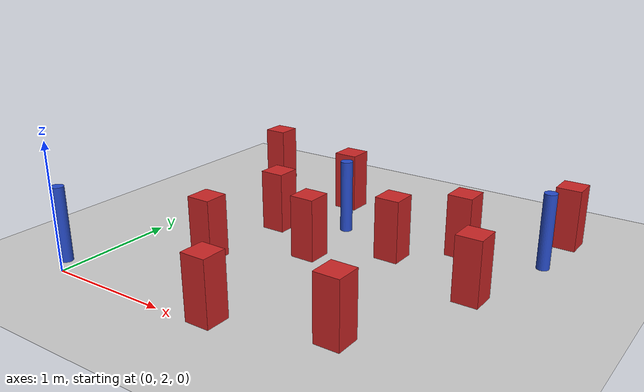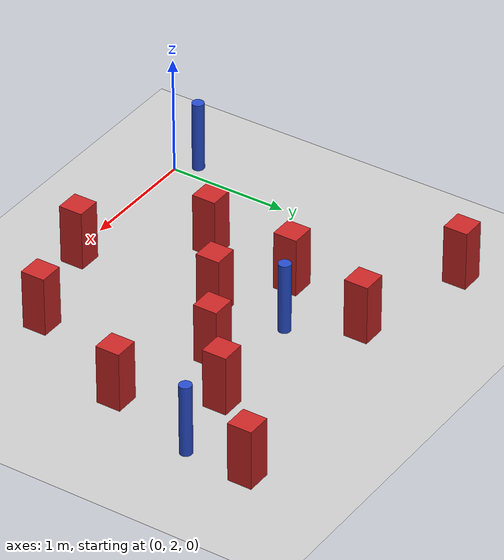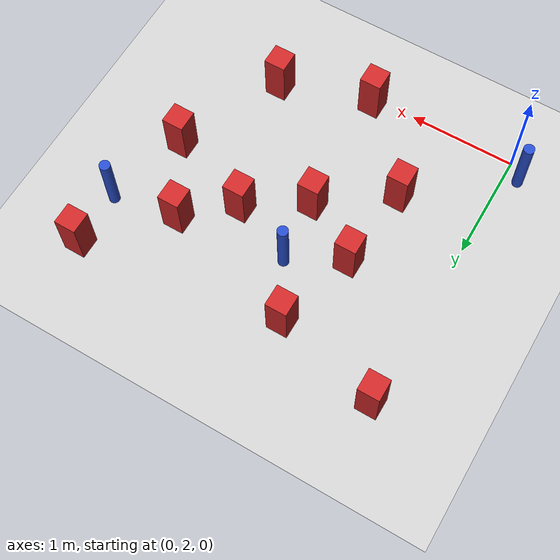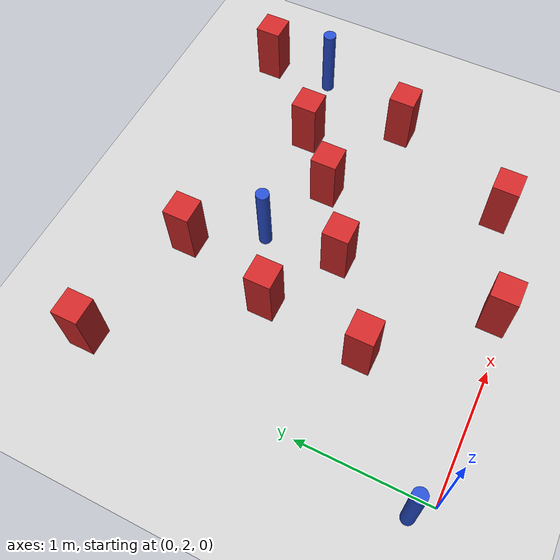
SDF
<sdf version="1.6">
 <world name="default">
  <model name="ground_plane">
   <static>1</static>
   <link name="link">
    <collision name="collision">
     <geometry><plane><normal>0 0 1</normal><size>100 100</size></plane></geometry>
     <surface><friction><ode><mu>100</mu><mu2>50</mu2></ode></friction></surface>
    </collision>
    <visual name="visual">
     <cast_shadows>0</cast_shadows>
     <geometry><plane><normal>0 0 1</normal><size>100 100</size></plane></geometry>
     <material>
      <ambient>1.0 1.0 1.0 1.0</ambient>
      <diffuse>0.8 0.8 0.8 1.0</diffuse>
      <specular>0.01 0.01 0.01 1.000000</specular>
     </material>
    </visual>
   </link>
  </model>
  <model name="pole_obstacle28">
   <static>true</static>
   <pose>-0.127259990239 2.14203002078 -3.09024884848e-07 -7.19054271902e-07 -2.11315075204e-07 -1.93935509288e-07</pose>
   <link name="link">
    <pose>0 0 0.3 0 -0 0</pose>
    <inertial>
     <mass>1</mass>
     <inertia><ixx>0.145833</ixx><ixy>0</ixy><ixz>0</ixz><iyy>0.145833</iyy><iyz>0</iyz><izz>0.125</izz></inertia>
    </inertial>
    <collision name="collision">
     <geometry><cylinder><radius>0.05</radius><length>.6</length></cylinder></geometry>
    </collision>
    <visual name="visual">
     <geometry><cylinder><radius>0.05</radius><length>.6</length></cylinder></geometry>
     <material>
      <script><name>Gazebo/Blue</name><uri>file://media/materials/scripts/gazebo.material</uri></script>
     </material>
    </visual>
   </link>
  </model>
  <model name="square_post_obstacle25">
   <static>true</static>
   <pose>1.3880900552 2.08539997467 -4.36207812815e-07 3.75137919937e-06 9.77721102514e-07 2.47381364184e-05</pose>
   <link name="link">
    <pose>0 0 0.25 0 -0 0</pose>
    <inertial>
     <mass>100</mass>
     <inertia>
      <ixx>0.166667</ixx>
      <ixy>0</ixy>
      <ixz>0</ixz>
      <iyy>0.166667</iyy>
      <iyz>0</iyz>
      <izz>0.166667</izz>
     </inertia>
    </inertial>
    <collision name="collision"><geometry><box><size>.2 .2 .5</size></box></geometry></collision>
    <visual name="visual">
     <geometry><box><size>.2 .2 .5</size></box></geometry>
     <material>
      <script><name>Gazebo/Red</name><uri>file://media/materials/scripts/gazebo.material</uri></script>
     </material>
    </visual>
   </link>
  </model>
  <model name="square_post_obstacle37">
   <static>true</static>
   <pose>2.2260100552 2.34418997467 -4.36207812815e-07 3.75137919937e-06 9.77721102514e-07 2.47381364184e-05</pose>
   <link name="link">
    <pose>0 0 0.25 0 -0 0</pose>
    <inertial>
     <mass>100</mass>
     <inertia>
      <ixx>0.166667</ixx>
      <ixy>0</ixy>
      <ixz>0</ixz>
      <iyy>0.166667</iyy>
      <iyz>0</iyz>
      <izz>0.166667</izz>
     </inertia>
    </inertial>
    <collision name="collision"><geometry><box><size>.2 .2 .5</size></box></geometry></collision>
    <visual name="visual">
     <geometry><box><size>.2 .2 .5</size></box></geometry>
     <material>
      <script><name>Gazebo/Red</name><uri>file://media/materials/scripts/gazebo.material</uri></script>
     </material>
    </visual>
   </link>
  </model>
  <model name="square_post_obstacle42">
   <static>true</static>
   <pose>1.0119000552 4.36777997467 -4.36207812815e-07 3.75137919937e-06 9.77721102514e-07 2.47381364184e-05</pose>
   <link name="link">
    <pose>0 0 0.25 0 -0 0</pose>
    <inertial>
     <mass>100</mass>
     <inertia>
      <ixx>0.166667</ixx>
      <ixy>0</ixy>
      <ixz>0</ixz>
      <iyy>0.166667</iyy>
      <iyz>0</iyz>
      <izz>0.166667</izz>
     </inertia>
    </inertial>
    <collision name="collision"><geometry><box><size>.2 .2 .5</size></box></geometry></collision>
    <visual name="visual">
     <geometry><box><size>.2 .2 .5</size></box></geometry>
     <material>
      <script><name>Gazebo/Red</name><uri>file://media/materials/scripts/gazebo.material</uri></script>
     </material>
    </visual>
   </link>
  </model>
  <model name="square_post_obstacle68">
   <static>true</static>
   <pose>1.8762800552 3.62501997467 -4.36207812815e-07 3.75137919937e-06 9.77721102514e-07 2.47381364184e-05</pose>
   <link name="link">
    <pose>0 0 0.25 0 -0 0</pose>
    <inertial>
     <mass>100</mass>
     <inertia>
      <ixx>0.166667</ixx>
      <ixy>0</ixy>
      <ixz>0</ixz>
      <iyy>0.166667</iyy>
      <iyz>0</iyz>
      <izz>0.166667</izz>
     </inertia>
    </inertial>
    <collision name="collision"><geometry><box><size>.2 .2 .5</size></box></geometry></collision>
    <visual name="visual">
     <geometry><box><size>.2 .2 .5</size></box></geometry>
     <material>
      <script><name>Gazebo/Red</name><uri>file://media/materials/scripts/gazebo.material</uri></script>
     </material>
    </visual>
   </link>
  </model>
  <model name="square_post_obstacle70">
   <static>true</static>
   <pose>0.718320055196 2.83022997467 -4.36207812815e-07 3.75137919937e-06 9.77721102514e-07 2.47381364184e-05</pose>
   <link name="link">
    <pose>0 0 0.25 0 -0 0</pose>
    <inertial>
     <mass>100</mass>
     <inertia>
      <ixx>0.166667</ixx>
      <ixy>0</ixy>
      <ixz>0</ixz>
      <iyy>0.166667</iyy>
      <iyz>0</iyz>
      <izz>0.166667</izz>
     </inertia>
    </inertial>
    <collision name="collision"><geometry><box><size>.2 .2 .5</size></box></geometry></collision>
    <visual name="visual">
     <geometry><box><size>.2 .2 .5</size></box></geometry>
     <material>
      <script><name>Gazebo/Red</name><uri>file://media/materials/scripts/gazebo.material</uri></script>
     </material>
    </visual>
   </link>
  </model>
  <model name="square_post_obstacle73">
   <static>true</static>
   <pose>2.9115300552 4.61348997467 -4.36207812815e-07 3.75137919937e-06 9.77721102514e-07 2.47381364184e-05</pose>
   <link name="link">
    <pose>0 0 0.25 0 -0 0</pose>
    <inertial>
     <mass>100</mass>
     <inertia>
      <ixx>0.166667</ixx>
      <ixy>0</ixy>
      <ixz>0</ixz>
      <iyy>0.166667</iyy>
      <iyz>0</iyz>
      <izz>0.166667</izz>
     </inertia>
    </inertial>
    <collision name="collision"><geometry><box><size>.2 .2 .5</size></box></geometry></collision>
    <visual name="visual">
     <geometry><box><size>.2 .2 .5</size></box></geometry>
     <material>
      <script><name>Gazebo/Red</name><uri>file://media/materials/scripts/gazebo.material</uri></script>
     </material>
    </visual>
   </link>
  </model>
  <model name="pole_obstacle114">
   <static>true</static>
   <pose>2.91105000976 4.09429002078 -3.09024884848e-07 -7.19054271903e-07 -2.11315075193e-07 -1.93935509285e-07</pose>
   <link name="link">
    <pose>0 0 0.3 0 -0 0</pose>
    <inertial>
     <mass>1</mass>
     <inertia><ixx>0.145833</ixx><ixy>0</ixy><ixz>0</ixz><iyy>0.145833</iyy><iyz>0</iyz><izz>0.125</izz></inertia>
    </inertial>
    <collision name="collision">
     <geometry><cylinder><radius>0.05</radius><length>.6</length></cylinder></geometry>
    </collision>
    <visual name="visual">
     <geometry><cylinder><radius>0.05</radius><length>.6</length></cylinder></geometry>
     <material>
      <script><name>Gazebo/Blue</name><uri>file://media/materials/scripts/gazebo.material</uri></script>
     </material>
    </visual>
   </link>
  </model>
  <model name="square_post_obstacle115">
   <static>true</static>
   <pose>0.795203055196 3.60834997467 -4.36207812815e-07 3.75137919937e-06 9.77721102514e-07 2.47381364184e-05</pose>
   <link name="link">
    <pose>0 0 0.25 0 -0 0</pose>
    <inertial>
     <mass>100</mass>
     <inertia>
      <ixx>0.166667</ixx>
      <ixy>0</ixy>
      <ixz>0</ixz>
      <iyy>0.166667</iyy>
      <iyz>0</iyz>
      <izz>0.166667</izz>
     </inertia>
    </inertial>
    <collision name="collision"><geometry><box><size>.2 .2 .5</size></box></geometry></collision>
    <visual name="visual">
     <geometry><box><size>.2 .2 .5</size></box></geometry>
     <material>
      <script><name>Gazebo/Red</name><uri>file://media/materials/scripts/gazebo.material</uri></script>
     </material>
    </visual>
   </link>
  </model>
  <model name="square_post_obstacle133">
   <static>true</static>
   <pose>2.6792100552 3.32822997467 -4.36207812815e-07 3.75137919937e-06 9.77721102514e-07 2.47381364184e-05</pose>
   <link name="link">
    <pose>0 0 0.25 0 -0 0</pose>
    <inertial>
     <mass>100</mass>
     <inertia>
      <ixx>0.166667</ixx>
      <ixy>0</ixy>
      <ixz>0</ixz>
      <iyy>0.166667</iyy>
      <iyz>0</iyz>
      <izz>0.166667</izz>
     </inertia>
    </inertial>
    <collision name="collision"><geometry><box><size>.2 .2 .5</size></box></geometry></collision>
    <visual name="visual">
     <geometry><box><size>.2 .2 .5</size></box></geometry>
     <material>
      <script><name>Gazebo/Red</name><uri>file://media/materials/scripts/gazebo.material</uri></script>
     </material>
    </visual>
   </link>
  </model>
  <model name="square_post_obstacle140">
   <static>true</static>
   <pose>1.3394700552 3.28426997467 -4.36207812815e-07 3.75137919937e-06 9.77721102514e-07 2.47381364184e-05</pose>
   <link name="link">
    <pose>0 0 0.25 0 -0 0</pose>
    <inertial>
     <mass>100</mass>
     <inertia>
      <ixx>0.166667</ixx>
      <ixy>0</ixy>
      <ixz>0</ixz>
      <iyy>0.166667</iyy>
      <iyz>0</iyz>
      <izz>0.166667</izz>
     </inertia>
    </inertial>
    <collision name="collision"><geometry><box><size>.2 .2 .5</size></box></geometry></collision>
    <visual name="visual">
     <geometry><box><size>.2 .2 .5</size></box></geometry>
     <material>
      <script><name>Gazebo/Red</name><uri>file://media/materials/scripts/gazebo.material</uri></script>
     </material>
    </visual>
   </link>
  </model>
  <model name="pole_obstacle146">
   <static>true</static>
   <pose>1.29387000976 3.86922002078 -3.09024884848e-07 -7.19054271902e-07 -2.11315075192e-07 -1.93935509282e-07</pose>
   <link name="link">
    <pose>0 0 0.3 0 -0 0</pose>
    <inertial>
     <mass>1</mass>
     <inertia><ixx>0.145833</ixx><ixy>0</ixy><ixz>0</ixz><iyy>0.145833</iyy><iyz>0</iyz><izz>0.125</izz></inertia>
    </inertial>
    <collision name="collision">
     <geometry><cylinder><radius>0.05</radius><length>.6</length></cylinder></geometry>
    </collision>
    <visual name="visual">
     <geometry><cylinder><radius>0.05</radius><length>.6</length></cylinder></geometry>
     <material>
      <script><name>Gazebo/Blue</name><uri>file://media/materials/scripts/gazebo.material</uri></script>
     </material>
    </visual>
   </link>
  </model>
  <model name="square_post_obstacle190">
   <static>true</static>
   <pose>0.0273410551963 4.61471997467 -4.36207812815e-07 3.75137919937e-06 9.77721102514e-07 2.47381364184e-05</pose>
   <link name="link">
    <pose>0 0 0.25 0 -0 0</pose>
    <inertial>
     <mass>100</mass>
     <inertia>
      <ixx>0.166667</ixx>
      <ixy>0</ixy>
      <ixz>0</ixz>
      <iyy>0.166667</iyy>
      <iyz>0</iyz>
      <izz>0.166667</izz>
     </inertia>
    </inertial>
    <collision name="collision"><geometry><box><size>.2 .2 .5</size></box></geometry></collision>
    <visual name="visual">
     <geometry><box><size>.2 .2 .5</size></box></geometry>
     <material>
      <script><name>Gazebo/Red</name><uri>file://media/materials/scripts/gazebo.material</uri></script>
     </material>
    </visual>
   </link>
  </model>
  <model name="square_post_obstacle201">
   <static>true</static>
   <pose>2.2967500552 3.98736997467 -4.36207812815e-07 3.75137919937e-06 9.77721102514e-07 2.47381364184e-05</pose>
   <link name="link">
    <pose>0 0 0.25 0 -0 0</pose>
    <inertial>
     <mass>100</mass>
     <inertia>
      <ixx>0.166667</ixx>
      <ixy>0</ixy>
      <ixz>0</ixz>
      <iyy>0.166667</iyy>
      <iyz>0</iyz>
      <izz>0.166667</izz>
     </inertia>
    </inertial>
    <collision name="collision"><geometry><box><size>.2 .2 .5</size></box></geometry></collision>
    <visual name="visual">
     <geometry><box><size>.2 .2 .5</size></box></geometry>
     <material>
      <script><name>Gazebo/Red</name><uri>file://media/materials/scripts/gazebo.material</uri></script>
     </material>
    </visual>
   </link>
  </model>
 </world>
</sdf>
